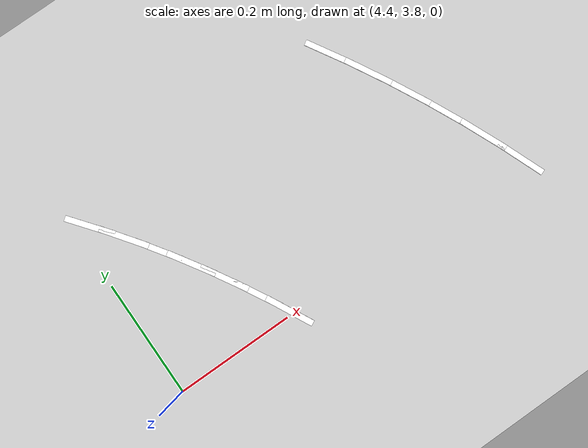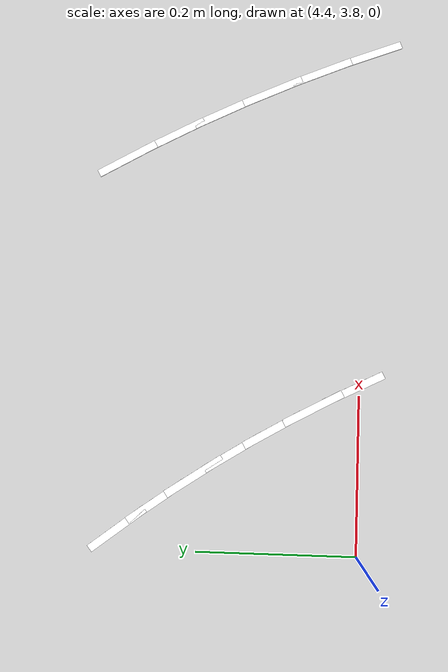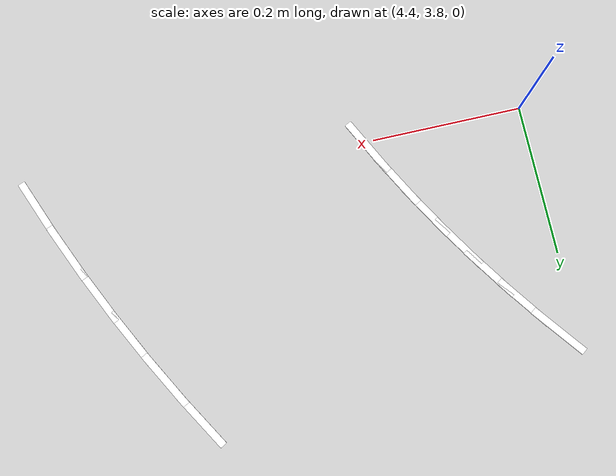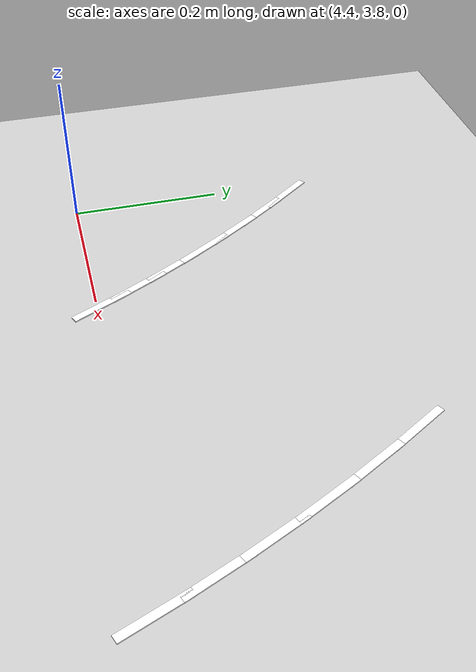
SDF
<sdf version="1.7">
 <world name="default">
  <model name="ground_plane">
   <static>1</static>
   <link name="link">
    <collision name="collision">
     <geometry><plane><normal>0 0 1</normal><size>100 100</size></plane></geometry>
     <surface>
      <contact><collide_bitmask>65535</collide_bitmask></contact>
      <friction><ode><mu>100</mu><mu2>50</mu2></ode></friction>
     </surface>
    </collision>
    <visual name="visual">
     <cast_shadows>0</cast_shadows>
     <geometry><plane><normal>0 0 1</normal><size>100 100</size></plane></geometry>
     <material>
      <script><uri>file://media/materials/scripts/gazebo.material</uri><name>Gazebo/Grey</name></script>
     </material>
    </visual>
   </link>
  </model>
  <model name="lane_line_right_161">
   <static>1</static>
   <link name="link">
    <pose>0 0 -0.004 0 -0 0</pose>
    <visual name="visual">
     <geometry><box><size>0.0841 0.01 0.01</size></box></geometry>
     <material><ambient>1 1 1 1</ambient><diffuse>1 1 1 1</diffuse></material>
    </visual>
    <collision name="collision"><geometry><box><size>0.0841 0.01 0.01</size></box></geometry></collision>
   </link>
   <pose>5.05195 3.7927 0 0 -0 1.93945</pose>
  </model>
  <model name="lane_line_right_162">
   <static>1</static>
   <link name="link">
    <pose>0 0 -0.004 0 -0 0</pose>
    <visual name="visual">
     <geometry><box><size>0.0841 0.01 0.01</size></box></geometry>
     <material><ambient>1 1 1 1</ambient><diffuse>1 1 1 1</diffuse></material>
    </visual>
    <collision name="collision"><geometry><box><size>0.0841 0.01 0.01</size></box></geometry></collision>
   </link>
   <pose>5.02549 3.85807 0 0 -0 1.97151</pose>
  </model>
  <model name="lane_line_right_163">
   <static>1</static>
   <link name="link">
    <pose>0 0 -0.004 0 -0 0</pose>
    <visual name="visual">
     <geometry><box><size>0.0841 0.01 0.01</size></box></geometry>
     <material><ambient>1 1 1 1</ambient><diffuse>1 1 1 1</diffuse></material>
    </visual>
    <collision name="collision"><geometry><box><size>0.0841 0.01 0.01</size></box></geometry></collision>
   </link>
   <pose>4.99694 3.92254 0 0 -0 2.00357</pose>
  </model>
  <model name="lane_line_left_164">
   <static>1</static>
   <link name="link">
    <pose>0 0 -0.004 0 -0 0</pose>
    <visual name="visual">
     <geometry><box><size>0.0841 0.01 0.01</size></box></geometry>
     <material><ambient>1 1 1 1</ambient><diffuse>1 1 1 1</diffuse></material>
    </visual>
    <collision name="collision"><geometry><box><size>0.0841 0.01 0.01</size></box></geometry></collision>
   </link>
   <pose>4.60879 3.80677 0 0 -0 2.03562</pose>
  </model>
  <model name="lane_line_right_164">
   <static>1</static>
   <link name="link">
    <pose>0 0 -0.004 0 -0 0</pose>
    <visual name="visual">
     <geometry><box><size>0.0841 0.01 0.01</size></box></geometry>
     <material><ambient>1 1 1 1</ambient><diffuse>1 1 1 1</diffuse></material>
    </visual>
    <collision name="collision"><geometry><box><size>0.0841 0.01 0.01</size></box></geometry></collision>
   </link>
   <pose>4.96635 3.98608 0 0 -0 2.03562</pose>
  </model>
  <model name="lane_line_left_165">
   <static>1</static>
   <link name="link">
    <pose>0 0 -0.004 0 -0 0</pose>
    <visual name="visual">
     <geometry><box><size>0.0841 0.01 0.01</size></box></geometry>
     <material><ambient>1 1 1 1</ambient><diffuse>1 1 1 1</diffuse></material>
    </visual>
    <collision name="collision"><geometry><box><size>0.0841 0.01 0.01</size></box></geometry></collision>
   </link>
   <pose>4.5821 3.85792 0 0 -0 2.06768</pose>
  </model>
  <model name="lane_line_right_165">
   <static>1</static>
   <link name="link">
    <pose>0 0 -0.004 0 -0 0</pose>
    <visual name="visual">
     <geometry><box><size>0.0841 0.01 0.01</size></box></geometry>
     <material><ambient>1 1 1 1</ambient><diffuse>1 1 1 1</diffuse></material>
    </visual>
    <collision name="collision"><geometry><box><size>0.0841 0.01 0.01</size></box></geometry></collision>
   </link>
   <pose>4.93373 4.04859 0 0 -0 2.06768</pose>
  </model>
  <model name="lane_line_left_166">
   <static>1</static>
   <link name="link">
    <pose>0 0 -0.004 0 -0 0</pose>
    <visual name="visual">
     <geometry><box><size>0.0841 0.01 0.01</size></box></geometry>
     <material><ambient>1 1 1 1</ambient><diffuse>1 1 1 1</diffuse></material>
    </visual>
    <collision name="collision"><geometry><box><size>0.0841 0.01 0.01</size></box></geometry></collision>
   </link>
   <pose>4.55379 3.90819 0 0 -0 2.09974</pose>
  </model>
  <model name="lane_line_right_166">
   <static>1</static>
   <link name="link">
    <pose>0 0 -0.004 0 -0 0</pose>
    <visual name="visual">
     <geometry><box><size>0.0841 0.01 0.01</size></box></geometry>
     <material><ambient>1 1 1 1</ambient><diffuse>1 1 1 1</diffuse></material>
    </visual>
    <collision name="collision"><geometry><box><size>0.0841 0.01 0.01</size></box></geometry></collision>
   </link>
   <pose>4.89913 4.11003 0 0 -0 2.09974</pose>
  </model>
  <model name="lane_line_left_167">
   <static>1</static>
   <link name="link">
    <pose>0 0 -0.004 0 -0 0</pose>
    <visual name="visual">
     <geometry><box><size>0.0841 0.01 0.01</size></box></geometry>
     <material><ambient>1 1 1 1</ambient><diffuse>1 1 1 1</diffuse></material>
    </visual>
    <collision name="collision"><geometry><box><size>0.0841 0.01 0.01</size></box></geometry></collision>
   </link>
   <pose>4.52389 3.95752 0 0 -0 2.1318</pose>
  </model>
  <model name="lane_line_left_168">
   <static>1</static>
   <link name="link">
    <pose>0 0 -0.004 0 -0 0</pose>
    <visual name="visual">
     <geometry><box><size>0.0841 0.01 0.01</size></box></geometry>
     <material><ambient>1 1 1 1</ambient><diffuse>1 1 1 1</diffuse></material>
    </visual>
    <collision name="collision"><geometry><box><size>0.0841 0.01 0.01</size></box></geometry></collision>
   </link>
   <pose>4.49241 4.00587 0 0 -0 2.16385</pose>
  </model>
  <model name="lane_line_left_169">
   <static>1</static>
   <link name="link">
    <pose>0 0 -0.004 0 -0 0</pose>
    <visual name="visual">
     <geometry><box><size>0.0841 0.01 0.01</size></box></geometry>
     <material><ambient>1 1 1 1</ambient><diffuse>1 1 1 1</diffuse></material>
    </visual>
    <collision name="collision"><geometry><box><size>0.0841 0.01 0.01</size></box></geometry></collision>
   </link>
   <pose>4.45941 4.05319 0 0 -0 2.19591</pose>
  </model>
  <model name="lane_line_left_170">
   <static>1</static>
   <link name="link">
    <pose>0 0 -0.004 0 -0 0</pose>
    <visual name="visual">
     <geometry><box><size>0.0841 0.01 0.01</size></box></geometry>
     <material><ambient>1 1 1 1</ambient><diffuse>1 1 1 1</diffuse></material>
    </visual>
    <collision name="collision"><geometry><box><size>0.0841 0.01 0.01</size></box></geometry></collision>
   </link>
   <pose>4.4249 4.09942 0 0 -0 2.22797</pose>
  </model>
 </world>
</sdf>
